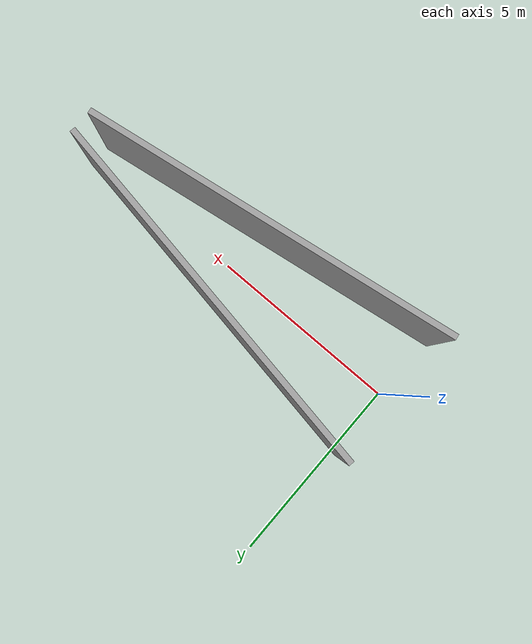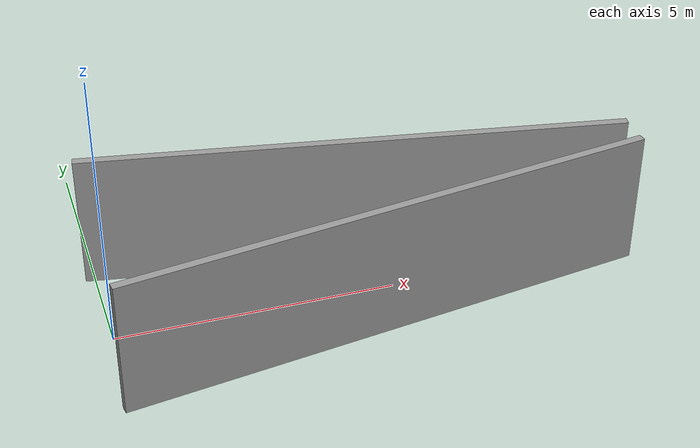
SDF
<?xml version='1.0'?>
<sdf version='1.7'>
  <model name='ten_corridor_3'>
    <pose>4.62 0.010646 0 0 -0 0</pose>
    <link name='Wall_24'>
      <collision name='Wall_24_Collision'>
        <geometry>
          <box>
            <size>9.6852 0.15 2.5</size>
          </box>
        </geometry>
        <pose>0 0 1.25 0 -0 0</pose>
      </collision>
      <visual name='Wall_24_Visual'>
        <pose>0 0 1.25 0 -0 0</pose>
        <geometry>
          <box>
            <size>9.6852 0.15 2.5</size>
          </box>
        </geometry>
        <material>
          <script>
            <uri>file://media/materials/scripts/gazebo.material</uri>
            <name>Gazebo/Grey</name>
          </script>
          <ambient>1 1 1 1</ambient>
        </material>
        <meta>
          <layer>0</layer>
        </meta>
      </visual>
      <pose>0 0.999354 0 0 -0 -0.168597</pose>
    </link>
    <link name='Wall_26'>
      <collision name='Wall_26_Collision'>
        <geometry>
          <box>
            <size>9.65368 0.15 2.5</size>
          </box>
        </geometry>
        <pose>0 0 1.25 0 -0 0</pose>
      </collision>
      <visual name='Wall_26_Visual'>
        <pose>0 0 1.25 0 -0 0</pose>
        <geometry>
          <box>
            <size>9.65368 0.15 2.5</size>
          </box>
        </geometry>
        <material>
          <script>
            <uri>file://media/materials/scripts/gazebo.material</uri>
            <name>Gazebo/Grey</name>
          </script>
          <ambient>1 1 1 1</ambient>
        </material>
        <meta>
          <layer>0</layer>
        </meta>
      </visual>
      <pose>0 -1.10065 0 0 -0 0.147849</pose>
    </link>
    <static>1</static>
  </model>
</sdf>
